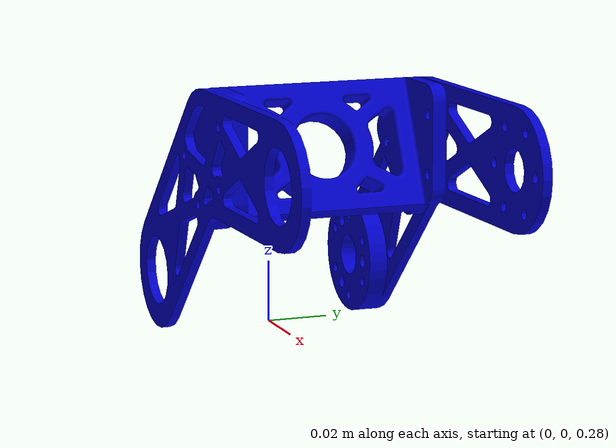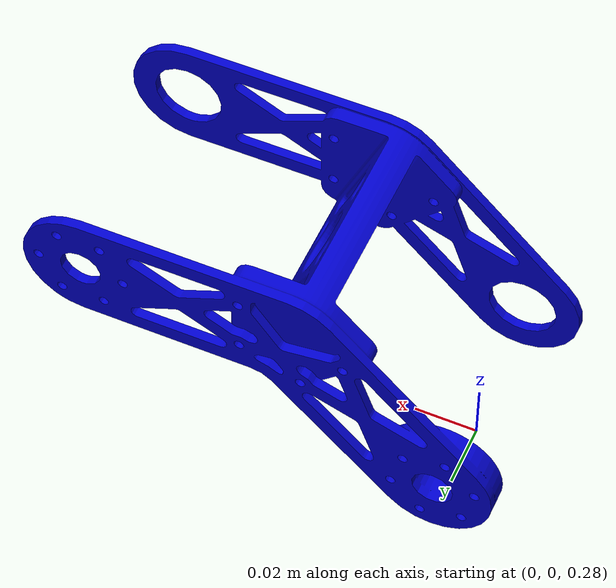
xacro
<?xml version="1.0"?>
<robot xmlns:xacro="http://www.ros.org/wiki/xacro" name="knee_link_only">

    <!-- INCLUDES                                                               -->
    <xacro:include filename="knee_link_gazebo.xacro" />

    <!-- MATERIALS                                                              -->
    <material name="blue">
        <color rgba="0.0 0.0 0.8 1.0" />
    </material>

    <!-- PHYSICAL PROPERTIES                                                    -->

    <!-- Knee Link Mass -->
    <xacro:property name="mass_knee" value="0.091" />

    <!-- Knee Link Center of Mass (Inertial Frame Origin) -->
    <xacro:property name="knee_inertial_x" value="0.0456464050051834" />
    <xacro:property name="knee_inertial_y" value="0.0308623958898155" />
    <xacro:property name="knee_inertial_z" value="0.00502941450993857" />

    <!-- Knee Link Inertia Tensor (physically consistent, Izz = 0.0008) -->
    <xacro:property name="knee_ixx" value="0.008" />
    <xacro:property name="knee_ixy" value="0.0" />
    <xacro:property name="knee_ixz" value="0.0" />
    <xacro:property name="knee_iyy" value="0.008" />
    <xacro:property name="knee_iyz" value="0.0" />
    <xacro:property name="knee_izz" value="0.000175" />

    <!-- Joint Limits -->
    <xacro:property name="joint_effort_limit" value="50.0" />
    <xacro:property name="joint_velocity_limit" value="50.0" />

    <!-- WORLD LINK (Fixed Root)                                                -->
    <link name="world">
        <!-- Empty link - serves as fixed world reference -->
    </link>

    <gazebo reference="world">
        <static>true</static>
    </gazebo>

    <!-- WORLD TO KNEE JOINT (Continuous - Pendulum)                            -->
    <joint name="world_to_knee" type="continuous">
        <parent link="world" />
        <child link="knee_link" />
        <!-- Position: 0.3m above ground, rotated 90° around X-axis -->
        <origin xyz="0 0 0.3" rpy="1.5701 0 0" />
        <!-- Rotation axis: Z-axis (pitch motion when rotated) -->
        <axis xyz="0 0 1" />
        <!-- Joint limits -->
        <limit effort="${joint_effort_limit}" velocity="${joint_velocity_limit}" />
        <!-- No damping or friction for free pendulum motion -->
        <dynamics damping="0.0004" friction="0.0008" />
    </joint>

    <!-- KNEE LINK                                                              -->
    <link name="knee_link">

        <!-- Inertial Properties -->
        <inertial>
            <origin
                xyz="${knee_inertial_x} ${knee_inertial_y} ${knee_inertial_z}"
                rpy="0 0 0" />
            <mass value="${mass_knee}" />
            <inertia
                ixx="${knee_ixx}"  ixy="${knee_ixy}"  ixz="${knee_ixz}"
                                   iyy="${knee_iyy}"  iyz="${knee_iyz}"
                                                      izz="${knee_izz}" />
        </inertial>

        <!-- Visual Representation -->
        <visual>
            <origin xyz="0 0 0" rpy="0 0 0" />
            <geometry>
                <mesh filename="package://system_identification_description/meshes/knee_link_v2.STL" />
            </geometry>
            <material name="blue" />
        </visual>

        <!-- Collision Geometry -->
        <collision>
            <origin xyz="0 0 0" rpy="0 0 0" />
            <geometry>
                <mesh filename="package://system_identification_description/meshes/knee_link_v2.STL" />
            </geometry>
        </collision>

    </link>

</robot>
